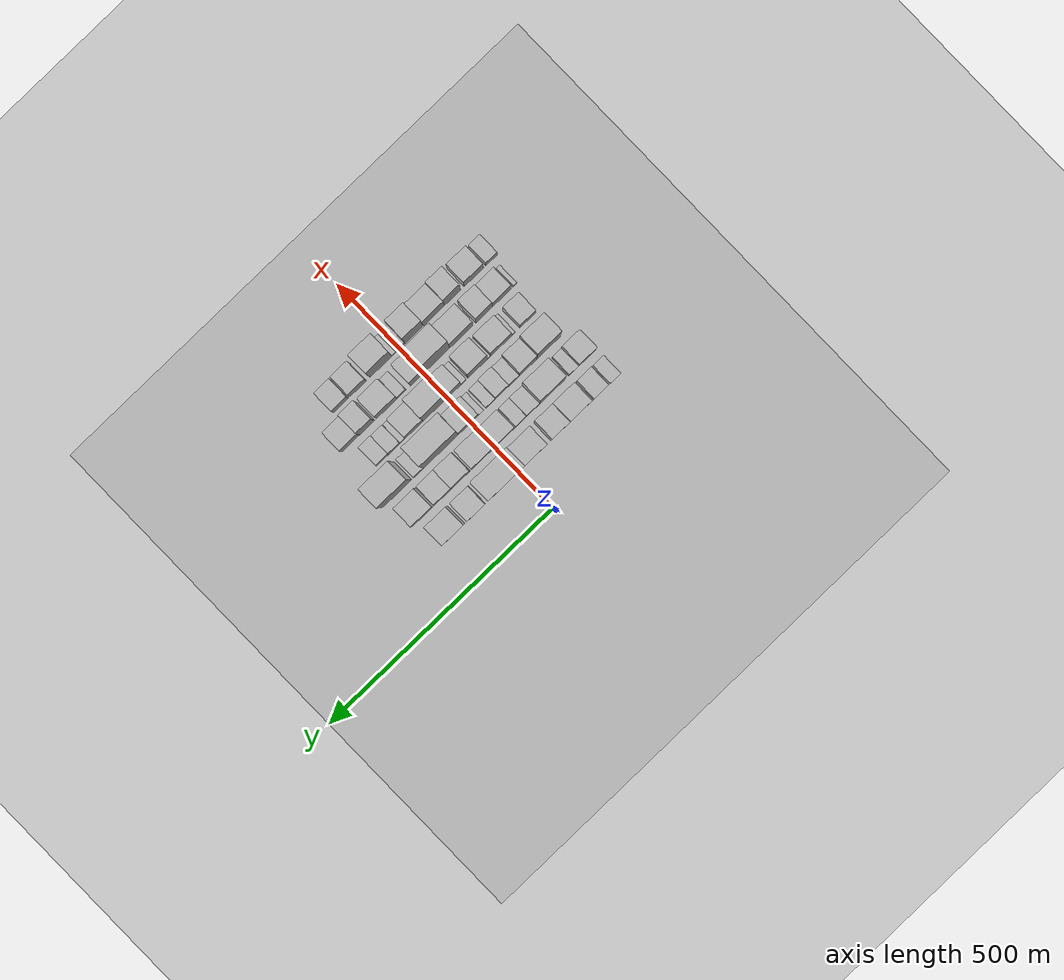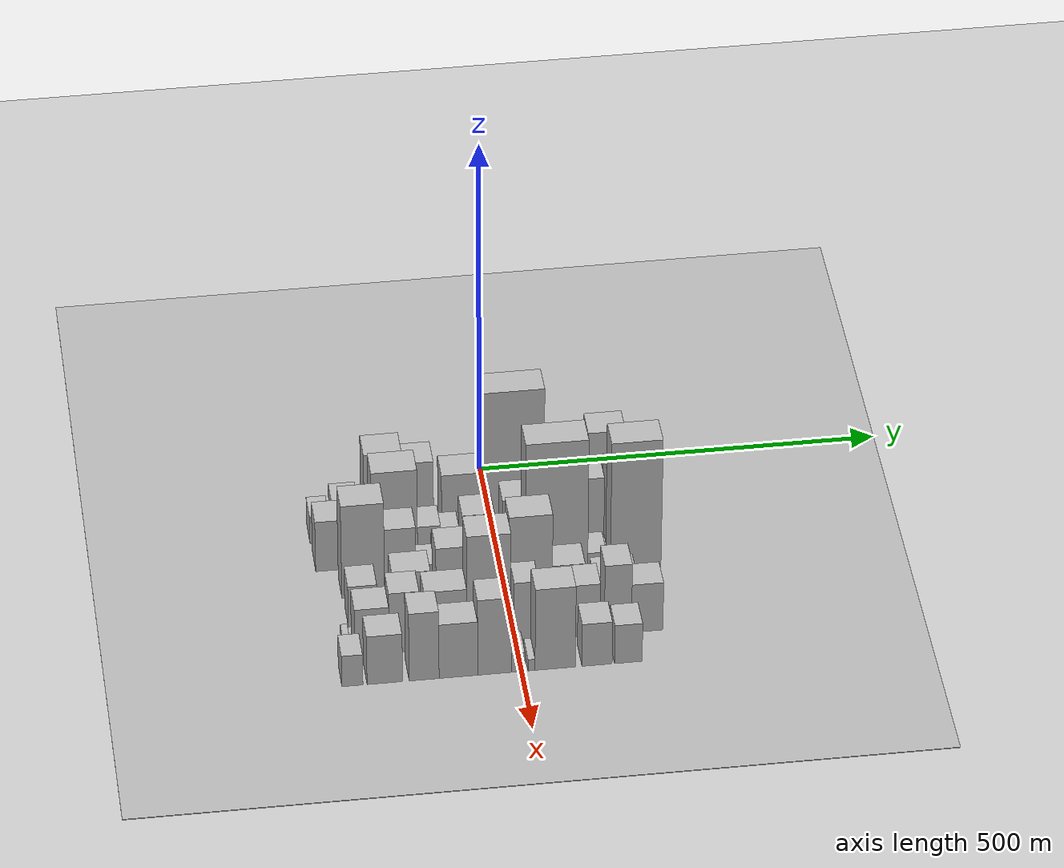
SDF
<sdf version="1.6">
 <world name="default">
  <include><name>ground_plane_1</name><uri>model://HANNAS_ground_plane</uri></include>
  <include>
   <name>ground_plane_2</name>
   <uri>model://HANNAS_ground_plane</uri>
   <pose>100 0 0  0 0 0</pose>
  </include>
  <model name="building_24">
   <static>1</static>
   <pose>100.0000 -214.3001 0 0.000000 0.000000 0.000000</pose>
   <link name="link">
    <pose>0 0 21.00 0 0 0</pose>
    <collision name="collision"><geometry><box><size>40.0000 23.8653 42.0000</size></box></geometry></collision>
    <visual name="visual">
     <cast_shadows>0</cast_shadows>
     <geometry><box><size>40.0000 23.8653 42.0000</size></box></geometry>
     <material>
      <script>
       <uri>model://HANNAS_wall/materials/scripts</uri>
       <uri>model://HANNAS_wall/materials/textures</uri>
       <name>vrc/HANNAS_wall</name>
      </script>
     </material>
    </visual>
   </link>
  </model>
  <model name="building_25">
   <static>1</static>
   <pose>100.0000 -182.2615 0 0.000000 0.000000 0.000000</pose>
   <link name="link">
    <pose>0 0 30.00 0 0 0</pose>
    <collision name="collision"><geometry><box><size>40.0000 32.2119 60.0000</size></box></geometry></collision>
    <visual name="visual">
     <cast_shadows>0</cast_shadows>
     <geometry><box><size>40.0000 32.2119 60.0000</size></box></geometry>
     <material>
      <script>
       <uri>model://HANNAS_wall/materials/scripts</uri>
       <uri>model://HANNAS_wall/materials/textures</uri>
       <name>vrc/HANNAS_wall</name>
      </script>
     </material>
    </visual>
   </link>
  </model>
  <model name="building_26">
   <static>1</static>
   <pose>100.0000 -162.3117 0 0.000000 0.000000 0.000000</pose>
   <link name="link">
    <pose>0 0 9.00 0 0 0</pose>
    <collision name="collision"><geometry><box><size>40.0000 7.6877 18.0000</size></box></geometry></collision>
    <visual name="visual">
     <cast_shadows>0</cast_shadows>
     <geometry><box><size>40.0000 7.6877 18.0000</size></box></geometry>
     <material>
      <script>
       <uri>model://HANNAS_wall/materials/scripts</uri>
       <uri>model://HANNAS_wall/materials/textures</uri>
       <name>vrc/HANNAS_wall</name>
      </script>
     </material>
    </visual>
   </link>
  </model>
  <model name="building_27">
   <static>1</static>
   <pose>100.0000 -135.0123 0 0.000000 0.000000 0.000000</pose>
   <link name="link">
    <pose>0 0 66.00 0 0 0</pose>
    <collision name="collision"><geometry><box><size>40.0000 46.9110 132.0000</size></box></geometry></collision>
    <visual name="visual">
     <cast_shadows>0</cast_shadows>
     <geometry><box><size>40.0000 46.9110 132.0000</size></box></geometry>
     <material>
      <script>
       <uri>model://HANNAS_wall/materials/scripts</uri>
       <uri>model://HANNAS_wall/materials/textures</uri>
       <name>vrc/HANNAS_wall</name>
      </script>
     </material>
    </visual>
   </link>
  </model>
  <model name="building_28">
   <static>1</static>
   <pose>100.0000 -92.0308 0 0.000000 0.000000 0.000000</pose>
   <link name="link">
    <pose>0 0 57.00 0 0 0</pose>
    <collision name="collision"><geometry><box><size>40.0000 39.0520 114.0000</size></box></geometry></collision>
    <visual name="visual">
     <cast_shadows>0</cast_shadows>
     <geometry><box><size>40.0000 39.0520 114.0000</size></box></geometry>
     <material>
      <script>
       <uri>model://HANNAS_wall/materials/scripts</uri>
       <uri>model://HANNAS_wall/materials/textures</uri>
       <name>vrc/HANNAS_wall</name>
      </script>
     </material>
    </visual>
   </link>
  </model>
  <model name="building_29">
   <static>1</static>
   <pose>100.0000 -37.2151 0 0.000000 0.000000 0.000000</pose>
   <link name="link">
    <pose>0 0 45.00 0 0 0</pose>
    <collision name="collision"><geometry><box><size>40.0000 50.5796 90.0000</size></box></geometry></collision>
    <visual name="visual">
     <cast_shadows>0</cast_shadows>
     <geometry><box><size>40.0000 50.5796 90.0000</size></box></geometry>
     <material>
      <script>
       <uri>model://HANNAS_wall/materials/scripts</uri>
       <uri>model://HANNAS_wall/materials/textures</uri>
       <name>vrc/HANNAS_wall</name>
      </script>
     </material>
    </visual>
   </link>
  </model>
  <model name="building_30">
   <static>1</static>
   <pose>100.0000 26.6968 0 0.000000 0.000000 0.000000</pose>
   <link name="link">
    <pose>0 0 106.50 0 0 0</pose>
    <collision name="collision"><geometry><box><size>40.0000 77.2442 213.0000</size></box></geometry></collision>
    <visual name="visual">
     <cast_shadows>0</cast_shadows>
     <geometry><box><size>40.0000 77.2442 213.0000</size></box></geometry>
     <material>
      <script>
       <uri>model://HANNAS_wall/materials/scripts</uri>
       <uri>model://HANNAS_wall/materials/textures</uri>
       <name>vrc/HANNAS_wall</name>
      </script>
     </material>
    </visual>
   </link>
  </model>
  <model name="building_31">
   <static>1</static>
   <pose>100.0000 93.3202 0 0.000000 0.000000 0.000000</pose>
   <link name="link">
    <pose>0 0 39.00 0 0 0</pose>
    <collision name="collision"><geometry><box><size>40.0000 40.0027 78.0000</size></box></geometry></collision>
    <visual name="visual">
     <cast_shadows>0</cast_shadows>
     <geometry><box><size>40.0000 40.0027 78.0000</size></box></geometry>
     <material>
      <script>
       <uri>model://HANNAS_wall/materials/scripts</uri>
       <uri>model://HANNAS_wall/materials/textures</uri>
       <name>vrc/HANNAS_wall</name>
      </script>
     </material>
    </visual>
   </link>
  </model>
  <model name="building_32">
   <static>1</static>
   <pose>100.0000 142.5750 0 0.000000 0.000000 0.000000</pose>
   <link name="link">
    <pose>0 0 69.00 0 0 0</pose>
    <collision name="collision"><geometry><box><size>40.0000 46.5068 138.0000</size></box></geometry></collision>
    <visual name="visual">
     <cast_shadows>0</cast_shadows>
     <geometry><box><size>40.0000 46.5068 138.0000</size></box></geometry>
     <material>
      <script>
       <uri>model://HANNAS_wall/materials/scripts</uri>
       <uri>model://HANNAS_wall/materials/textures</uri>
       <name>vrc/HANNAS_wall</name>
      </script>
     </material>
    </visual>
   </link>
  </model>
  <model name="building_74">
   <static>1</static>
   <pose>155.0000 -205.5108 0 0.000000 0.000000 0.000000</pose>
   <link name="link">
    <pose>0 0 39.00 0 0 0</pose>
    <collision name="collision"><geometry><box><size>40.0000 39.2521 78.0000</size></box></geometry></collision>
    <visual name="visual">
     <cast_shadows>0</cast_shadows>
     <geometry><box><size>40.0000 39.2521 78.0000</size></box></geometry>
     <material>
      <script>
       <uri>model://HANNAS_wall/materials/scripts</uri>
       <uri>model://HANNAS_wall/materials/textures</uri>
       <name>vrc/HANNAS_wall</name>
      </script>
     </material>
    </visual>
   </link>
  </model>
  <model name="building_75">
   <static>1</static>
   <pose>155.0000 -175.6511 0 0.000000 0.000000 0.000000</pose>
   <link name="link">
    <pose>0 0 19.50 0 0 0</pose>
    <collision name="collision"><geometry><box><size>40.0000 20.4673 39.0000</size></box></geometry></collision>
    <visual name="visual">
     <cast_shadows>0</cast_shadows>
     <geometry><box><size>40.0000 20.4673 39.0000</size></box></geometry>
     <material>
      <script>
       <uri>model://HANNAS_wall/materials/scripts</uri>
       <uri>model://HANNAS_wall/materials/textures</uri>
       <name>vrc/HANNAS_wall</name>
      </script>
     </material>
    </visual>
   </link>
  </model>
  <model name="building_76">
   <static>1</static>
   <pose>155.0000 -127.2554 0 0.000000 0.000000 0.000000</pose>
   <link name="link">
    <pose>0 0 73.50 0 0 0</pose>
    <collision name="collision"><geometry><box><size>40.0000 56.3242 147.0000</size></box></geometry></collision>
    <visual name="visual">
     <cast_shadows>0</cast_shadows>
     <geometry><box><size>40.0000 56.3242 147.0000</size></box></geometry>
     <material>
      <script>
       <uri>model://HANNAS_wall/materials/scripts</uri>
       <uri>model://HANNAS_wall/materials/textures</uri>
       <name>vrc/HANNAS_wall</name>
      </script>
     </material>
    </visual>
   </link>
  </model>
  <model name="building_77">
   <static>1</static>
   <pose>155.0000 -84.8413 0 0.000000 0.000000 0.000000</pose>
   <link name="link">
    <pose>0 0 28.50 0 0 0</pose>
    <collision name="collision"><geometry><box><size>40.0000 28.5039 57.0000</size></box></geometry></collision>
    <visual name="visual">
     <cast_shadows>0</cast_shadows>
     <geometry><box><size>40.0000 28.5039 57.0000</size></box></geometry>
     <material>
      <script>
       <uri>model://HANNAS_wall/materials/scripts</uri>
       <uri>model://HANNAS_wall/materials/textures</uri>
       <name>vrc/HANNAS_wall</name>
      </script>
     </material>
    </visual>
   </link>
  </model>
  <model name="building_78">
   <static>1</static>
   <pose>155.0000 -58.6024 0 0.000000 0.000000 0.000000</pose>
   <link name="link">
    <pose>0 0 22.50 0 0 0</pose>
    <collision name="collision"><geometry><box><size>40.0000 23.9740 45.0000</size></box></geometry></collision>
    <visual name="visual">
     <cast_shadows>0</cast_shadows>
     <geometry><box><size>40.0000 23.9740 45.0000</size></box></geometry>
     <material>
      <script>
       <uri>model://HANNAS_wall/materials/scripts</uri>
       <uri>model://HANNAS_wall/materials/textures</uri>
       <name>vrc/HANNAS_wall</name>
      </script>
     </material>
    </visual>
   </link>
  </model>
  <model name="building_79">
   <static>1</static>
   <pose>155.0000 -23.7336 0 0.000000 0.000000 0.000000</pose>
   <link name="link">
    <pose>0 0 34.50 0 0 0</pose>
    <collision name="collision"><geometry><box><size>40.0000 39.7637 69.0000</size></box></geometry></collision>
    <visual name="visual">
     <cast_shadows>0</cast_shadows>
     <geometry><box><size>40.0000 39.7637 69.0000</size></box></geometry>
     <material>
      <script>
       <uri>model://HANNAS_wall/materials/scripts</uri>
       <uri>model://HANNAS_wall/materials/textures</uri>
       <name>vrc/HANNAS_wall</name>
      </script>
     </material>
    </visual>
   </link>
  </model>
  <model name="building_80">
   <static>1</static>
   <pose>155.0000 28.4591 0 0.000000 0.000000 0.000000</pose>
   <link name="link">
    <pose>0 0 43.50 0 0 0</pose>
    <collision name="collision"><geometry><box><size>40.0000 44.6219 87.0000</size></box></geometry></collision>
    <visual name="visual">
     <cast_shadows>0</cast_shadows>
     <geometry><box><size>40.0000 44.6219 87.0000</size></box></geometry>
     <material>
      <script>
       <uri>model://HANNAS_wall/materials/scripts</uri>
       <uri>model://HANNAS_wall/materials/textures</uri>
       <name>vrc/HANNAS_wall</name>
      </script>
     </material>
    </visual>
   </link>
  </model>
  <model name="building_81">
   <static>1</static>
   <pose>155.0000 74.6252 0 0.000000 0.000000 0.000000</pose>
   <link name="link">
    <pose>0 0 60.00 0 0 0</pose>
    <collision name="collision"><geometry><box><size>40.0000 39.7103 120.0000</size></box></geometry></collision>
    <visual name="visual">
     <cast_shadows>0</cast_shadows>
     <geometry><box><size>40.0000 39.7103 120.0000</size></box></geometry>
     <material>
      <script>
       <uri>model://HANNAS_wall/materials/scripts</uri>
       <uri>model://HANNAS_wall/materials/textures</uri>
       <name>vrc/HANNAS_wall</name>
      </script>
     </material>
    </visual>
   </link>
  </model>
  <model name="building_82">
   <static>1</static>
   <pose>155.0000 113.2204 0 0.000000 0.000000 0.000000</pose>
   <link name="link">
    <pose>0 0 55.50 0 0 0</pose>
    <collision name="collision"><geometry><box><size>40.0000 37.4801 111.0000</size></box></geometry></collision>
    <visual name="visual">
     <cast_shadows>0</cast_shadows>
     <geometry><box><size>40.0000 37.4801 111.0000</size></box></geometry>
     <material>
      <script>
       <uri>model://HANNAS_wall/materials/scripts</uri>
       <uri>model://HANNAS_wall/materials/textures</uri>
       <name>vrc/HANNAS_wall</name>
      </script>
     </material>
    </visual>
   </link>
  </model>
  <model name="building_83">
   <static>1</static>
   <pose>155.0000 158.5607 0 0.000000 0.000000 0.000000</pose>
   <link name="link">
    <pose>0 0 58.50 0 0 0</pose>
    <collision name="collision"><geometry><box><size>40.0000 45.2004 117.0000</size></box></geometry></collision>
    <visual name="visual">
     <cast_shadows>0</cast_shadows>
     <geometry><box><size>40.0000 45.2004 117.0000</size></box></geometry>
     <material>
      <script>
       <uri>model://HANNAS_wall/materials/scripts</uri>
       <uri>model://HANNAS_wall/materials/textures</uri>
       <name>vrc/HANNAS_wall</name>
      </script>
     </material>
    </visual>
   </link>
  </model>
  <model name="building_127">
   <static>1</static>
   <pose>210.0000 -172.6805 0 0.000000 0.000000 0.000000</pose>
   <link name="link">
    <pose>0 0 72.00 0 0 0</pose>
    <collision name="collision"><geometry><box><size>40.0000 52.5747 144.0000</size></box></geometry></collision>
    <visual name="visual">
     <cast_shadows>0</cast_shadows>
     <geometry><box><size>40.0000 52.5747 144.0000</size></box></geometry>
     <material>
      <script>
       <uri>model://HANNAS_wall/materials/scripts</uri>
       <uri>model://HANNAS_wall/materials/textures</uri>
       <name>vrc/HANNAS_wall</name>
      </script>
     </material>
    </visual>
   </link>
  </model>
  <model name="building_128">
   <static>1</static>
   <pose>210.0000 -127.0043 0 0.000000 0.000000 0.000000</pose>
   <link name="link">
    <pose>0 0 51.00 0 0 0</pose>
    <collision name="collision"><geometry><box><size>40.0000 38.7778 102.0000</size></box></geometry></collision>
    <visual name="visual">
     <cast_shadows>0</cast_shadows>
     <geometry><box><size>40.0000 38.7778 102.0000</size></box></geometry>
     <material>
      <script>
       <uri>model://HANNAS_wall/materials/scripts</uri>
       <uri>model://HANNAS_wall/materials/textures</uri>
       <name>vrc/HANNAS_wall</name>
      </script>
     </material>
    </visual>
   </link>
  </model>
  <model name="building_129">
   <static>1</static>
   <pose>210.0000 -95.9191 0 0.000000 0.000000 0.000000</pose>
   <link name="link">
    <pose>0 0 21.00 0 0 0</pose>
    <collision name="collision"><geometry><box><size>40.0000 23.3925 42.0000</size></box></geometry></collision>
    <visual name="visual">
     <cast_shadows>0</cast_shadows>
     <geometry><box><size>40.0000 23.3925 42.0000</size></box></geometry>
     <material>
      <script>
       <uri>model://HANNAS_wall/materials/scripts</uri>
       <uri>model://HANNAS_wall/materials/textures</uri>
       <name>vrc/HANNAS_wall</name>
      </script>
     </material>
    </visual>
   </link>
  </model>
  <model name="building_130">
   <static>1</static>
   <pose>210.0000 -69.2057 0 0.000000 0.000000 0.000000</pose>
   <link name="link">
    <pose>0 0 30.00 0 0 0</pose>
    <collision name="collision"><geometry><box><size>40.0000 30.0344 60.0000</size></box></geometry></collision>
    <visual name="visual">
     <cast_shadows>0</cast_shadows>
     <geometry><box><size>40.0000 30.0344 60.0000</size></box></geometry>
     <material>
      <script>
       <uri>model://HANNAS_wall/materials/scripts</uri>
       <uri>model://HANNAS_wall/materials/textures</uri>
       <name>vrc/HANNAS_wall</name>
      </script>
     </material>
    </visual>
   </link>
  </model>
  <model name="building_131">
   <static>1</static>
   <pose>210.0000 -43.7849 0 0.000000 0.000000 0.000000</pose>
   <link name="link">
    <pose>0 0 18.00 0 0 0</pose>
    <collision name="collision"><geometry><box><size>40.0000 20.8071 36.0000</size></box></geometry></collision>
    <visual name="visual">
     <cast_shadows>0</cast_shadows>
     <geometry><box><size>40.0000 20.8071 36.0000</size></box></geometry>
     <material>
      <script>
       <uri>model://HANNAS_wall/materials/scripts</uri>
       <uri>model://HANNAS_wall/materials/textures</uri>
       <name>vrc/HANNAS_wall</name>
      </script>
     </material>
    </visual>
   </link>
  </model>
  <model name="building_132">
   <static>1</static>
   <pose>210.0000 -22.5372 0 0.000000 0.000000 0.000000</pose>
   <link name="link">
    <pose>0 0 12.00 0 0 0</pose>
    <collision name="collision"><geometry><box><size>40.0000 11.6883 24.0000</size></box></geometry></collision>
    <visual name="visual">
     <cast_shadows>0</cast_shadows>
     <geometry><box><size>40.0000 11.6883 24.0000</size></box></geometry>
     <material>
      <script>
       <uri>model://HANNAS_wall/materials/scripts</uri>
       <uri>model://HANNAS_wall/materials/textures</uri>
       <name>vrc/HANNAS_wall</name>
      </script>
     </material>
    </visual>
   </link>
  </model>
  <model name="building_133">
   <static>1</static>
   <pose>210.0000 5.2627 0 0.000000 0.000000 0.000000</pose>
   <link name="link">
    <pose>0 0 37.50 0 0 0</pose>
    <collision name="collision"><geometry><box><size>40.0000 43.9116 75.0000</size></box></geometry></collision>
    <visual name="visual">
     <cast_shadows>0</cast_shadows>
     <geometry><box><size>40.0000 43.9116 75.0000</size></box></geometry>
     <material>
      <script>
       <uri>model://HANNAS_wall/materials/scripts</uri>
       <uri>model://HANNAS_wall/materials/textures</uri>
       <name>vrc/HANNAS_wall</name>
      </script>
     </material>
    </visual>
   </link>
  </model>
  <model name="building_134">
   <static>1</static>
   <pose>210.0000 65.7162 0 0.000000 0.000000 0.000000</pose>
   <link name="link">
    <pose>0 0 108.00 0 0 0</pose>
    <collision name="collision"><geometry><box><size>40.0000 76.9953 216.0000</size></box></geometry></collision>
    <visual name="visual">
     <cast_shadows>0</cast_shadows>
     <geometry><box><size>40.0000 76.9953 216.0000</size></box></geometry>
     <material>
      <script>
       <uri>model://HANNAS_wall/materials/scripts</uri>
       <uri>model://HANNAS_wall/materials/textures</uri>
       <name>vrc/HANNAS_wall</name>
      </script>
     </material>
    </visual>
   </link>
  </model>
  <model name="building_135">
   <static>1</static>
   <pose>210.0000 115.7090 0 0.000000 0.000000 0.000000</pose>
   <link name="link">
    <pose>0 0 19.50 0 0 0</pose>
    <collision name="collision"><geometry><box><size>40.0000 22.9903 39.0000</size></box></geometry></collision>
    <visual name="visual">
     <cast_shadows>0</cast_shadows>
     <geometry><box><size>40.0000 22.9903 39.0000</size></box></geometry>
     <material>
      <script>
       <uri>model://HANNAS_wall/materials/scripts</uri>
       <uri>model://HANNAS_wall/materials/textures</uri>
       <name>vrc/HANNAS_wall</name>
      </script>
     </material>
    </visual>
   </link>
  </model>
  <model name="building_136">
   <static>1</static>
   <pose>210.0000 163.5344 0 0.000000 0.000000 0.000000</pose>
   <link name="link">
    <pose>0 0 103.50 0 0 0</pose>
    <collision name="collision"><geometry><box><size>40.0000 62.6605 207.0000</size></box></geometry></collision>
    <visual name="visual">
     <cast_shadows>0</cast_shadows>
     <geometry><box><size>40.0000 62.6605 207.0000</size></box></geometry>
     <material>
      <script>
       <uri>model://HANNAS_wall/materials/scripts</uri>
       <uri>model://HANNAS_wall/materials/textures</uri>
       <name>vrc/HANNAS_wall</name>
      </script>
     </material>
    </visual>
   </link>
  </model>
  <model name="building_174">
   <static>1</static>
   <pose>265.0000 -179.5744 0 0.000000 0.000000 0.000000</pose>
   <link name="link">
    <pose>0 0 31.50 0 0 0</pose>
    <collision name="collision"><geometry><box><size>40.0000 35.4000 63.0000</size></box></geometry></collision>
    <visual name="visual">
     <cast_shadows>0</cast_shadows>
     <geometry><box><size>40.0000 35.4000 63.0000</size></box></geometry>
     <material>
      <script>
       <uri>model://HANNAS_wall/materials/scripts</uri>
       <uri>model://HANNAS_wall/materials/textures</uri>
       <name>vrc/HANNAS_wall</name>
      </script>
     </material>
    </visual>
   </link>
  </model>
  <model name="building_175">
   <static>1</static>
   <pose>265.0000 -147.5560 0 0.000000 0.000000 0.000000</pose>
   <link name="link">
    <pose>0 0 10.50 0 0 0</pose>
    <collision name="collision"><geometry><box><size>40.0000 8.6367 21.0000</size></box></geometry></collision>
    <visual name="visual">
     <cast_shadows>0</cast_shadows>
     <geometry><box><size>40.0000 8.6367 21.0000</size></box></geometry>
     <material>
      <script>
       <uri>model://HANNAS_wall/materials/scripts</uri>
       <uri>model://HANNAS_wall/materials/textures</uri>
       <name>vrc/HANNAS_wall</name>
      </script>
     </material>
    </visual>
   </link>
  </model>
  <model name="building_176">
   <static>1</static>
   <pose>265.0000 -119.8663 0 0.000000 0.000000 0.000000</pose>
   <link name="link">
    <pose>0 0 39.00 0 0 0</pose>
    <collision name="collision"><geometry><box><size>40.0000 46.7428 78.0000</size></box></geometry></collision>
    <visual name="visual">
     <cast_shadows>0</cast_shadows>
     <geometry><box><size>40.0000 46.7428 78.0000</size></box></geometry>
     <material>
      <script>
       <uri>model://HANNAS_wall/materials/scripts</uri>
       <uri>model://HANNAS_wall/materials/textures</uri>
       <name>vrc/HANNAS_wall</name>
      </script>
     </material>
    </visual>
   </link>
  </model>
  <model name="building_177">
   <static>1</static>
   <pose>265.0000 -93.0868 0 0.000000 0.000000 0.000000</pose>
   <link name="link">
    <pose>0 0 7.50 0 0 0</pose>
    <collision name="collision"><geometry><box><size>40.0000 6.8163 15.0000</size></box></geometry></collision>
    <visual name="visual">
     <cast_shadows>0</cast_shadows>
     <geometry><box><size>40.0000 6.8163 15.0000</size></box></geometry>
     <material>
      <script>
       <uri>model://HANNAS_wall/materials/scripts</uri>
       <uri>model://HANNAS_wall/materials/textures</uri>
       <name>vrc/HANNAS_wall</name>
      </script>
     </material>
    </visual>
   </link>
  </model>
  <model name="building_178">
   <static>1</static>
   <pose>265.0000 -68.0071 0 0.000000 0.000000 0.000000</pose>
   <link name="link">
    <pose>0 0 55.50 0 0 0</pose>
    <collision name="collision"><geometry><box><size>40.0000 43.3430 111.0000</size></box></geometry></collision>
    <visual name="visual">
     <cast_shadows>0</cast_shadows>
     <geometry><box><size>40.0000 43.3430 111.0000</size></box></geometry>
     <material>
      <script>
       <uri>model://HANNAS_wall/materials/scripts</uri>
       <uri>model://HANNAS_wall/materials/textures</uri>
       <name>vrc/HANNAS_wall</name>
      </script>
     </material>
    </visual>
   </link>
  </model>
  <model name="building_179">
   <static>1</static>
   <pose>265.0000 -36.6185 0 0.000000 0.000000 0.000000</pose>
   <link name="link">
    <pose>0 0 12.00 0 0 0</pose>
    <collision name="collision"><geometry><box><size>40.0000 11.4342 24.0000</size></box></geometry></collision>
    <visual name="visual">
     <cast_shadows>0</cast_shadows>
     <geometry><box><size>40.0000 11.4342 24.0000</size></box></geometry>
     <material>
      <script>
       <uri>model://HANNAS_wall/materials/scripts</uri>
       <uri>model://HANNAS_wall/materials/textures</uri>
       <name>vrc/HANNAS_wall</name>
      </script>
     </material>
    </visual>
   </link>
  </model>
  <model name="building_180">
   <static>1</static>
   <pose>265.0000 -15.5420 0 0.000000 0.000000 0.000000</pose>
   <link name="link">
    <pose>0 0 46.50 0 0 0</pose>
    <collision name="collision"><geometry><box><size>40.0000 30.7189 93.0000</size></box></geometry></collision>
    <visual name="visual">
     <cast_shadows>0</cast_shadows>
     <geometry><box><size>40.0000 30.7189 93.0000</size></box></geometry>
     <material>
      <script>
       <uri>model://HANNAS_wall/materials/scripts</uri>
       <uri>model://HANNAS_wall/materials/textures</uri>
       <name>vrc/HANNAS_wall</name>
      </script>
     </material>
    </visual>
   </link>
  </model>
  <model name="building_181">
   <static>1</static>
   <pose>265.0000 26.4026 0 0.000000 0.000000 0.000000</pose>
   <link name="link">
    <pose>0 0 75.00 0 0 0</pose>
    <collision name="collision"><geometry><box><size>40.0000 53.1701 150.0000</size></box></geometry></collision>
    <visual name="visual">
     <cast_shadows>0</cast_shadows>
     <geometry><box><size>40.0000 53.1701 150.0000</size></box></geometry>
     <material>
      <script>
       <uri>model://HANNAS_wall/materials/scripts</uri>
       <uri>model://HANNAS_wall/materials/textures</uri>
       <name>vrc/HANNAS_wall</name>
      </script>
     </material>
    </visual>
   </link>
  </model>
  <model name="building_182">
   <static>1</static>
   <pose>265.0000 72.9925 0 0.000000 0.000000 0.000000</pose>
   <link name="link">
    <pose>0 0 34.50 0 0 0</pose>
    <collision name="collision"><geometry><box><size>40.0000 40.0097 69.0000</size></box></geometry></collision>
    <visual name="visual">
     <cast_shadows>0</cast_shadows>
     <geometry><box><size>40.0000 40.0097 69.0000</size></box></geometry>
     <material>
      <script>
       <uri>model://HANNAS_wall/materials/scripts</uri>
       <uri>model://HANNAS_wall/materials/textures</uri>
       <name>vrc/HANNAS_wall</name>
      </script>
     </material>
    </visual>
   </link>
  </model>
  <model name="building_183">
   <static>1</static>
   <pose>265.0000 98.6547 0 0.000000 0.000000 0.000000</pose>
   <link name="link">
    <pose>0 0 12.00 0 0 0</pose>
    <collision name="collision"><geometry><box><size>40.0000 11.3147 24.0000</size></box></geometry></collision>
    <visual name="visual">
     <cast_shadows>0</cast_shadows>
     <geometry><box><size>40.0000 11.3147 24.0000</size></box></geometry>
     <material>
      <script>
       <uri>model://HANNAS_wall/materials/scripts</uri>
       <uri>model://HANNAS_wall/materials/textures</uri>
       <name>vrc/HANNAS_wall</name>
      </script>
     </material>
    </visual>
   </link>
  </model>
  <model name="building_184">
   <static>1</static>
   <pose>265.0000 116.9818 0 0.000000 0.000000 0.000000</pose>
   <link name="link">
    <pose>0 0 22.50 0 0 0</pose>
    <collision name="collision"><geometry><box><size>40.0000 25.3396 45.0000</size></box></geometry></collision>
    <visual name="visual">
     <cast_shadows>0</cast_shadows>
     <geometry><box><size>40.0000 25.3396 45.0000</size></box></geometry>
     <material>
      <script>
       <uri>model://HANNAS_wall/materials/scripts</uri>
       <uri>model://HANNAS_wall/materials/textures</uri>
       <name>vrc/HANNAS_wall</name>
      </script>
     </material>
    </visual>
   </link>
  </model>
  <model name="building_185">
   <static>1</static>
   <pose>265.0000 143.1136 0 0.000000 0.000000 0.000000</pose>
   <link name="link">
    <pose>0 0 22.50 0 0 0</pose>
    <collision name="collision"><geometry><box><size>40.0000 26.9239 45.0000</size></box></geometry></collision>
    <visual name="visual">
     <cast_shadows>0</cast_shadows>
     <geometry><box><size>40.0000 26.9239 45.0000</size></box></geometry>
     <material>
      <script>
       <uri>model://HANNAS_wall/materials/scripts</uri>
       <uri>model://HANNAS_wall/materials/textures</uri>
       <name>vrc/HANNAS_wall</name>
      </script>
     </material>
    </visual>
   </link>
  </model>
  <model name="building_226">
   <static>1</static>
   <pose>320.0000 -204.4857 0 0.000000 0.000000 0.000000</pose>
   <link name="link">
    <pose>0 0 9.00 0 0 0</pose>
    <collision name="collision"><geometry><box><size>40.0000 8.1271 18.0000</size></box></geometry></collision>
    <visual name="visual">
     <cast_shadows>0</cast_shadows>
     <geometry><box><size>40.0000 8.1271 18.0000</size></box></geometry>
     <material>
      <script>
       <uri>model://HANNAS_wall/materials/scripts</uri>
       <uri>model://HANNAS_wall/materials/textures</uri>
       <name>vrc/HANNAS_wall</name>
      </script>
     </material>
    </visual>
   </link>
  </model>
  <model name="building_227">
   <static>1</static>
   <pose>320.0000 -174.5884 0 0.000000 0.000000 0.000000</pose>
   <link name="link">
    <pose>0 0 36.00 0 0 0</pose>
    <collision name="collision"><geometry><box><size>40.0000 41.6674 72.0000</size></box></geometry></collision>
    <visual name="visual">
     <cast_shadows>0</cast_shadows>
     <geometry><box><size>40.0000 41.6674 72.0000</size></box></geometry>
     <material>
      <script>
       <uri>model://HANNAS_wall/materials/scripts</uri>
       <uri>model://HANNAS_wall/materials/textures</uri>
       <name>vrc/HANNAS_wall</name>
      </script>
     </material>
    </visual>
   </link>
  </model>
  <model name="building_228">
   <static>1</static>
   <pose>320.0000 -135.2681 0 0.000000 0.000000 0.000000</pose>
   <link name="link">
    <pose>0 0 46.50 0 0 0</pose>
    <collision name="collision"><geometry><box><size>40.0000 36.9733 93.0000</size></box></geometry></collision>
    <visual name="visual">
     <cast_shadows>0</cast_shadows>
     <geometry><box><size>40.0000 36.9733 93.0000</size></box></geometry>
     <material>
      <script>
       <uri>model://HANNAS_wall/materials/scripts</uri>
       <uri>model://HANNAS_wall/materials/textures</uri>
       <name>vrc/HANNAS_wall</name>
      </script>
     </material>
    </visual>
   </link>
  </model>
  <model name="building_229">
   <static>1</static>
   <pose>320.0000 -84.9024 0 0.000000 0.000000 0.000000</pose>
   <link name="link">
    <pose>0 0 45.00 0 0 0</pose>
    <collision name="collision"><geometry><box><size>40.0000 51.7581 90.0000</size></box></geometry></collision>
    <visual name="visual">
     <cast_shadows>0</cast_shadows>
     <geometry><box><size>40.0000 51.7581 90.0000</size></box></geometry>
     <material>
      <script>
       <uri>model://HANNAS_wall/materials/scripts</uri>
       <uri>model://HANNAS_wall/materials/textures</uri>
       <name>vrc/HANNAS_wall</name>
      </script>
     </material>
    </visual>
   </link>
  </model>
  <model name="building_230">
   <static>1</static>
   <pose>320.0000 -32.1240 0 0.000000 0.000000 0.000000</pose>
   <link name="link">
    <pose>0 0 85.50 0 0 0</pose>
    <collision name="collision"><geometry><box><size>40.0000 53.7988 171.0000</size></box></geometry></collision>
    <visual name="visual">
     <cast_shadows>0</cast_shadows>
     <geometry><box><size>40.0000 53.7988 171.0000</size></box></geometry>
     <material>
      <script>
       <uri>model://HANNAS_wall/materials/scripts</uri>
       <uri>model://HANNAS_wall/materials/textures</uri>
       <name>vrc/HANNAS_wall</name>
      </script>
     </material>
    </visual>
   </link>
  </model>
  <model name="building_231">
   <static>1</static>
   <pose>320.0000 13.6165 0 0.000000 0.000000 0.000000</pose>
   <link name="link">
    <pose>0 0 46.50 0 0 0</pose>
    <collision name="collision"><geometry><box><size>40.0000 29.6822 93.0000</size></box></geometry></collision>
    <visual name="visual">
     <cast_shadows>0</cast_shadows>
     <geometry><box><size>40.0000 29.6822 93.0000</size></box></geometry>
     <material>
      <script>
       <uri>model://HANNAS_wall/materials/scripts</uri>
       <uri>model://HANNAS_wall/materials/textures</uri>
       <name>vrc/HANNAS_wall</name>
      </script>
     </material>
    </visual>
   </link>
  </model>
  <model name="building_232">
   <static>1</static>
   <pose>320.0000 48.2401 0 0.000000 0.000000 0.000000</pose>
   <link name="link">
    <pose>0 0 19.50 0 0 0</pose>
    <collision name="collision"><geometry><box><size>40.0000 19.5651 39.0000</size></box></geometry></collision>
    <visual name="visual">
     <cast_shadows>0</cast_shadows>
     <geometry><box><size>40.0000 19.5651 39.0000</size></box></geometry>
     <material>
      <script>
       <uri>model://HANNAS_wall/materials/scripts</uri>
       <uri>model://HANNAS_wall/materials/textures</uri>
       <name>vrc/HANNAS_wall</name>
      </script>
     </material>
    </visual>
   </link>
  </model>
  <model name="building_233">
   <static>1</static>
   <pose>320.0000 81.0554 0 0.000000 0.000000 0.000000</pose>
   <link name="link">
    <pose>0 0 40.50 0 0 0</pose>
    <collision name="collision"><geometry><box><size>40.0000 46.0654 81.0000</size></box></geometry></collision>
    <visual name="visual">
     <cast_shadows>0</cast_shadows>
     <geometry><box><size>40.0000 46.0654 81.0000</size></box></geometry>
     <material>
      <script>
       <uri>model://HANNAS_wall/materials/scripts</uri>
       <uri>model://HANNAS_wall/materials/textures</uri>
       <name>vrc/HANNAS_wall</name>
      </script>
     </material>
    </visual>
   </link>
  </model>
  <model name="building_234">
   <static>1</static>
   <pose>320.0000 125.7120 0 0.000000 0.000000 0.000000</pose>
   <link name="link">
    <pose>0 0 54.00 0 0 0</pose>
    <collision name="collision"><geometry><box><size>40.0000 33.2479 108.0000</size></box></geometry></collision>
    <visual name="visual">
     <cast_shadows>0</cast_shadows>
     <geometry><box><size>40.0000 33.2479 108.0000</size></box></geometry>
     <material>
      <script>
       <uri>model://HANNAS_wall/materials/scripts</uri>
       <uri>model://HANNAS_wall/materials/textures</uri>
       <name>vrc/HANNAS_wall</name>
      </script>
     </material>
    </visual>
   </link>
  </model>
  <model name="building_235">
   <static>1</static>
   <pose>320.0000 161.6368 0 0.000000 0.000000 0.000000</pose>
   <link name="link">
    <pose>0 0 37.50 0 0 0</pose>
    <collision name="collision"><geometry><box><size>40.0000 38.6017 75.0000</size></box></geometry></collision>
    <visual name="visual">
     <cast_shadows>0</cast_shadows>
     <geometry><box><size>40.0000 38.6017 75.0000</size></box></geometry>
     <material>
      <script>
       <uri>model://HANNAS_wall/materials/scripts</uri>
       <uri>model://HANNAS_wall/materials/textures</uri>
       <name>vrc/HANNAS_wall</name>
      </script>
     </material>
    </visual>
   </link>
  </model>
  <model name="building_278">
   <static>1</static>
   <pose>375.0000 -204.7291 0 0.000000 0.000000 0.000000</pose>
   <link name="link">
    <pose>0 0 24.00 0 0 0</pose>
    <collision name="collision"><geometry><box><size>40.0000 25.4708 48.0000</size></box></geometry></collision>
    <visual name="visual">
     <cast_shadows>0</cast_shadows>
     <geometry><box><size>40.0000 25.4708 48.0000</size></box></geometry>
     <material>
      <script>
       <uri>model://HANNAS_wall/materials/scripts</uri>
       <uri>model://HANNAS_wall/materials/textures</uri>
       <name>vrc/HANNAS_wall</name>
      </script>
     </material>
    </visual>
   </link>
  </model>
  <model name="building_279">
   <static>1</static>
   <pose>375.0000 -165.5159 0 0.000000 0.000000 0.000000</pose>
   <link name="link">
    <pose>0 0 37.50 0 0 0</pose>
    <collision name="collision"><geometry><box><size>40.0000 42.9554 75.0000</size></box></geometry></collision>
    <visual name="visual">
     <cast_shadows>0</cast_shadows>
     <geometry><box><size>40.0000 42.9554 75.0000</size></box></geometry>
     <material>
      <script>
       <uri>model://HANNAS_wall/materials/scripts</uri>
       <uri>model://HANNAS_wall/materials/textures</uri>
       <name>vrc/HANNAS_wall</name>
      </script>
     </material>
    </visual>
   </link>
  </model>
  <model name="building_280">
   <static>1</static>
   <pose>375.0000 -117.8847 0 0.000000 0.000000 0.000000</pose>
   <link name="link">
    <pose>0 0 52.50 0 0 0</pose>
    <collision name="collision"><geometry><box><size>40.0000 36.3070 105.0000</size></box></geometry></collision>
    <visual name="visual">
     <cast_shadows>0</cast_shadows>
     <geometry><box><size>40.0000 36.3070 105.0000</size></box></geometry>
     <material>
      <script>
       <uri>model://HANNAS_wall/materials/scripts</uri>
       <uri>model://HANNAS_wall/materials/textures</uri>
       <name>vrc/HANNAS_wall</name>
      </script>
     </material>
    </visual>
   </link>
  </model>
  <model name="building_281">
   <static>1</static>
   <pose>375.0000 -76.3404 0 0.000000 0.000000 0.000000</pose>
   <link name="link">
    <pose>0 0 42.00 0 0 0</pose>
    <collision name="collision"><geometry><box><size>40.0000 46.7816 84.0000</size></box></geometry></collision>
    <visual name="visual">
     <cast_shadows>0</cast_shadows>
     <geometry><box><size>40.0000 46.7816 84.0000</size></box></geometry>
     <material>
      <script>
       <uri>model://HANNAS_wall/materials/scripts</uri>
       <uri>model://HANNAS_wall/materials/textures</uri>
       <name>vrc/HANNAS_wall</name>
      </script>
     </material>
    </visual>
   </link>
  </model>
  <model name="building_282">
   <static>1</static>
   <pose>375.0000 -32.5282 0 0.000000 0.000000 0.000000</pose>
   <link name="link">
    <pose>0 0 58.50 0 0 0</pose>
    <collision name="collision"><geometry><box><size>40.0000 40.8428 117.0000</size></box></geometry></collision>
    <visual name="visual">
     <cast_shadows>0</cast_shadows>
     <geometry><box><size>40.0000 40.8428 117.0000</size></box></geometry>
     <material>
      <script>
       <uri>model://HANNAS_wall/materials/scripts</uri>
       <uri>model://HANNAS_wall/materials/textures</uri>
       <name>vrc/HANNAS_wall</name>
      </script>
     </material>
    </visual>
   </link>
  </model>
  <model name="building_283">
   <static>1</static>
   <pose>375.0000 -3.8323 0 0.000000 0.000000 0.000000</pose>
   <link name="link">
    <pose>0 0 15.00 0 0 0</pose>
    <collision name="collision"><geometry><box><size>40.0000 16.5490 30.0000</size></box></geometry></collision>
    <visual name="visual">
     <cast_shadows>0</cast_shadows>
     <geometry><box><size>40.0000 16.5490 30.0000</size></box></geometry>
     <material>
      <script>
       <uri>model://HANNAS_wall/materials/scripts</uri>
       <uri>model://HANNAS_wall/materials/textures</uri>
       <name>vrc/HANNAS_wall</name>
      </script>
     </material>
    </visual>
   </link>
  </model>
  <model name="building_284">
   <static>1</static>
   <pose>375.0000 12.6656 0 0.000000 0.000000 0.000000</pose>
   <link name="link">
    <pose>0 0 9.00 0 0 0</pose>
    <collision name="collision"><geometry><box><size>40.0000 8.4468 18.0000</size></box></geometry></collision>
    <visual name="visual">
     <cast_shadows>0</cast_shadows>
     <geometry><box><size>40.0000 8.4468 18.0000</size></box></geometry>
     <material>
      <script>
       <uri>model://HANNAS_wall/materials/scripts</uri>
       <uri>model://HANNAS_wall/materials/textures</uri>
       <name>vrc/HANNAS_wall</name>
      </script>
     </material>
    </visual>
   </link>
  </model>
  <model name="building_285">
   <static>1</static>
   <pose>375.0000 41.4774 0 0.000000 0.000000 0.000000</pose>
   <link name="link">
    <pose>0 0 63.00 0 0 0</pose>
    <collision name="collision"><geometry><box><size>40.0000 49.1767 126.0000</size></box></geometry></collision>
    <visual name="visual">
     <cast_shadows>0</cast_shadows>
     <geometry><box><size>40.0000 49.1767 126.0000</size></box></geometry>
     <material>
      <script>
       <uri>model://HANNAS_wall/materials/scripts</uri>
       <uri>model://HANNAS_wall/materials/textures</uri>
       <name>vrc/HANNAS_wall</name>
      </script>
     </material>
    </visual>
   </link>
  </model>
  <model name="building_286">
   <static>1</static>
   <pose>375.0000 92.3830 0 0.000000 0.000000 0.000000</pose>
   <link name="link">
    <pose>0 0 33.00 0 0 0</pose>
    <collision name="collision"><geometry><box><size>40.0000 36.6345 66.0000</size></box></geometry></collision>
    <visual name="visual">
     <cast_shadows>0</cast_shadows>
     <geometry><box><size>40.0000 36.6345 66.0000</size></box></geometry>
     <material>
      <script>
       <uri>model://HANNAS_wall/materials/scripts</uri>
       <uri>model://HANNAS_wall/materials/textures</uri>
       <name>vrc/HANNAS_wall</name>
      </script>
     </material>
    </visual>
   </link>
  </model>
  <model name="building_287">
   <static>1</static>
   <pose>375.0000 130.5590 0 0.000000 0.000000 0.000000</pose>
   <link name="link">
    <pose>0 0 30.00 0 0 0</pose>
    <collision name="collision"><geometry><box><size>40.0000 33.7176 60.0000</size></box></geometry></collision>
    <visual name="visual">
     <cast_shadows>0</cast_shadows>
     <geometry><box><size>40.0000 33.7176 60.0000</size></box></geometry>
     <material>
      <script>
       <uri>model://HANNAS_wall/materials/scripts</uri>
       <uri>model://HANNAS_wall/materials/textures</uri>
       <name>vrc/HANNAS_wall</name>
      </script>
     </material>
    </visual>
   </link>
  </model>
 </world>
</sdf>
